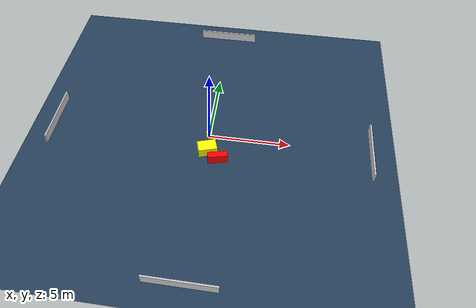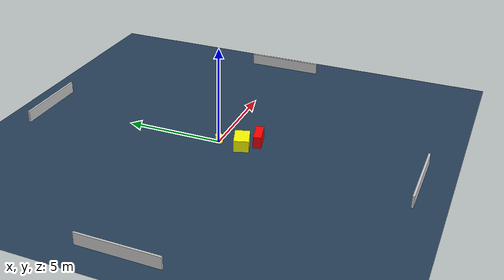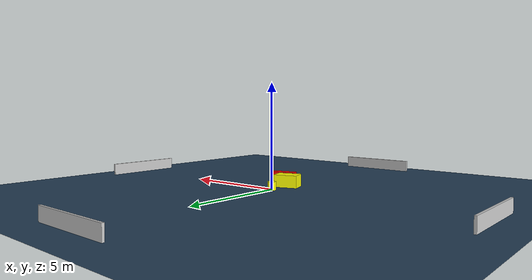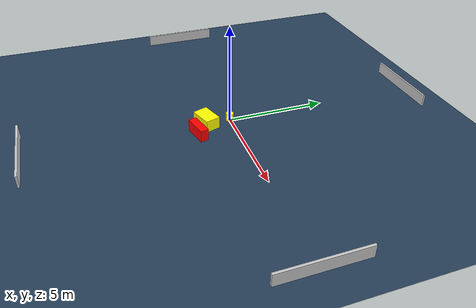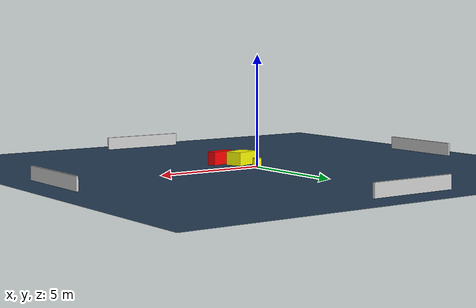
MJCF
<?xml version="1.0" ?>
<mujoco model="generated_environment">
  <option timestep="0.01" integrator="RK4" cone="elliptic"/>
  <default>
    <geom density="1"/>
  </default>
  <asset>
    <texture builtin="gradient" height="3072" name="skybox" rgb1="0.3 0.5 0.7" rgb2="0 0 0" type="skybox" width="512"/>
    <texture builtin="checker" height="300" name="groundplane" rgb1="0.2 0.3 0.4" rgb2="0.1 0.2 0.3" type="2d" width="300"/>
    <material name="groundplane" reflectance="0.2" texrepeat="5 5" texture="groundplane"/>
  </asset>
  <worldbody>
    <light dir="0 0 -1" directional="true" pos="0 0 1.5"/>
    <geom condim="3" friction="0.5 0.005 0.001" material="groundplane" name="floor" pos="0 0 0" size="0 0 0.05" type="plane"/>
    <body name="walls">
      <geom name="wall_1" condim="4" pos="-10.0 0.0 0.3" rgba="0.800000011920929 0.800000011920929 0.800000011920929 1.0" size="0.05 2.0 0.3" type="box"/>
      <geom name="wall_2" condim="4" pos="10.0 0.0 0.3" rgba="0.800000011920929 0.800000011920929 0.800000011920929 1.0" size="0.05 2.0 0.3" type="box"/>
      <geom name="wall_3" condim="4" pos="0.0 -10.0 0.3" rgba="0.800000011920929 0.800000011920929 0.800000011920929 1.0" size="2.0 0.05 0.3" type="box"/>
      <geom name="wall_4" condim="4" pos="0.0 10.0 0.3" rgba="0.800000011920929 0.800000011920929 0.800000011920929 1.0" size="2.0 0.05 0.3" type="box"/>
    </body>
    <body name="robot">
      <joint name="joint_x" type="slide" pos="0 0 0" axis="1 0 0"/>
      <joint name="joint_y" type="slide" pos="0 0 0" axis="0 1 0"/>
      <geom name="robot" type="cylinder" pos="0.0 0.0 0.2" size="0.2 0.2 0.0" mass="5.0" friction="1.0 0.005 0.0001" condim="4" rgba="1.0 1.0 0.0 1.0"/>
    </body>
    <body name="obstacle_1_movable">
      <geom name="obstacle_1_movable" condim="4" pos="0.032596610526856626 -1.2182938927245546 0.3" euler="0 0 107.97652016244558" friction="0.0 0.005 0.001" rgba="1.0 1.0 0.0 1.0" size="0.38075525992855774 0.5739630255750221 0.3" type="box" mass="0.1"/>
      <joint type="free"/>
    </body>
    <body name="obstacle_2_static">
      <geom name="obstacle_2_static" condim="4" pos="0.7474292472898905 -1.8336532773885041 0.3" euler="0 0 283.4432265022399" friction="0.0 0.005 0.001" rgba="1.0 0.0 0.0 1.0" size="0.20648286336875032 0.5985195960704326 0.3" type="box"/>
    </body>
  </worldbody>
  <actuator>
    <motor name="actuator_x" joint="joint_x" gear="1" ctrlrange="-1 1"/>
    <motor name="actuator_y" joint="joint_y" gear="1" ctrlrange="-1 1"/>
  </actuator>
</mujoco>
